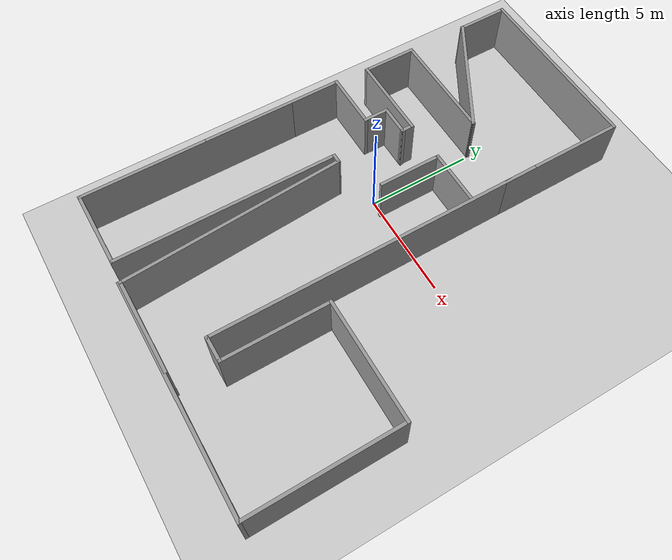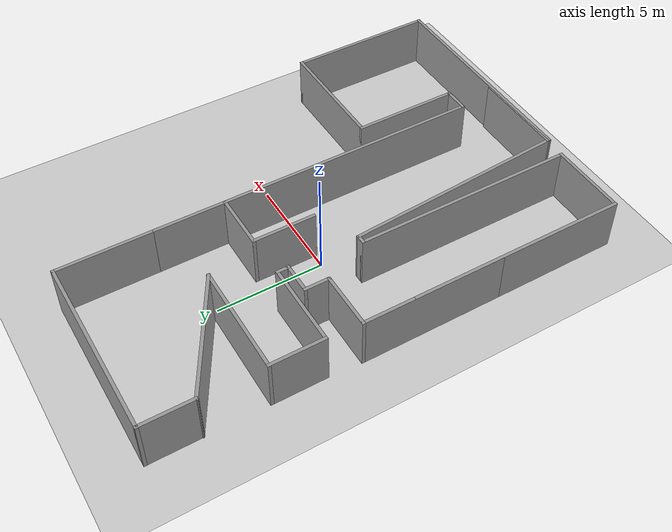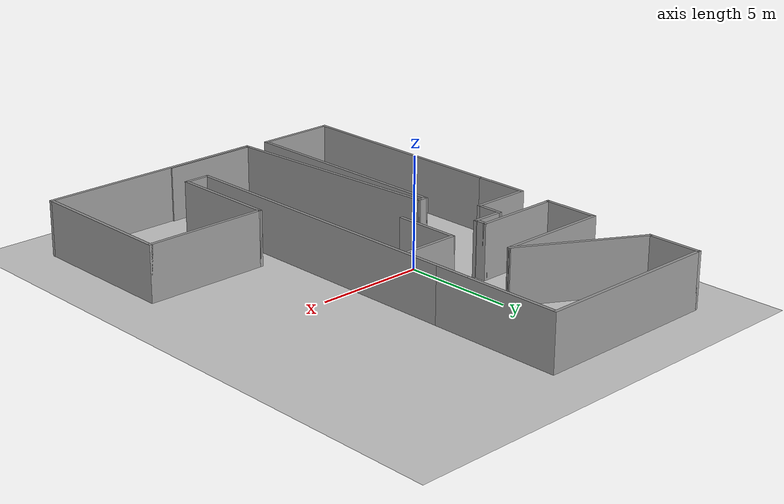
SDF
<sdf version="1.7">
 <world name="default">
  <light name="sun" type="directional">
   <pose>0 0 10 0 -0 0</pose>
   <diffuse>0.8 0.8 0.8 1</diffuse>
   <specular>0.2 0.2 0.2 1</specular>
   <attenuation>
    <range>1000</range>
    <constant>0.9</constant>
    <linear>0.01</linear>
    <quadratic>0.001</quadratic>
   </attenuation>
   <direction>-0.5 0.1 -0.9</direction>
   <spot><inner_angle>0</inner_angle><outer_angle>0</outer_angle><falloff>0</falloff></spot>
  </light>
  <model name="ground_plane">
   <static>1</static>
   <link name="link">
    <collision name="collision">
     <geometry><plane><normal>0 0 1</normal><size>100 100</size></plane></geometry>
     <surface>
      <contact><collide_bitmask>65535</collide_bitmask></contact>
      <friction><ode><mu>100</mu><mu2>50</mu2></ode></friction>
     </surface>
    </collision>
    <visual name="visual">
     <cast_shadows>0</cast_shadows>
     <geometry><plane><normal>0 0 1</normal><size>100 100</size></plane></geometry>
     <material>
      <script><uri>file://media/materials/scripts/gazebo.material</uri><name>Gazebo/Grey</name></script>
     </material>
    </visual>
   </link>
  </model>
  <gravity>0 0 -9.8</gravity>
  <magnetic_field>6e-06 2.3e-05 -4.2e-05</magnetic_field>
  <atmosphere type="adiabatic"/>
  <physics type="ode">
   <max_step_size>0.001</max_step_size>
   <real_time_factor>1</real_time_factor>
   <real_time_update_rate>1000</real_time_update_rate>
  </physics>
  <scene><ambient>0.4 0.4 0.4 1</ambient><background>0.7 0.7 0.7 1</background><shadows>1</shadows></scene>
  <spherical_coordinates>
   <surface_model>EARTH_WGS84</surface_model>
   <latitude_deg>0</latitude_deg>
   <longitude_deg>0</longitude_deg>
   <elevation>0</elevation>
   <heading_deg>0</heading_deg>
  </spherical_coordinates>
  <model name="final_swarm.world">
   <pose>2.3562 0.089672 0 0 -0 0</pose>
   <link name="Wall_0">
    <collision name="Wall_0_Collision">
     <geometry><box><size>0.16 0.15 2.5</size></box></geometry>
     <pose>0 0 1.25 0 -0 0</pose>
    </collision>
    <visual name="Wall_0_Visual">
     <pose>0 0 1.25 0 -0 0</pose>
     <geometry><box><size>0.16 0.15 2.5</size></box></geometry>
     <material>
      <script><uri>file://media/materials/scripts/gazebo.material</uri><name>Gazebo/Grey</name></script>
      <ambient>1 1 1 1</ambient>
     </material>
     <meta><layer>0</layer></meta>
    </visual>
    <pose>-7.50216 10.3908 0 0 -0 0</pose>
   </link>
   <link name="Wall_1">
    <collision name="Wall_1_Collision">
     <geometry><box><size>8.58 0.15 2.5</size></box></geometry>
     <pose>0 0 1.25 0 -0 0</pose>
    </collision>
    <visual name="Wall_1_Visual">
     <pose>0 0 1.25 0 -0 0</pose>
     <geometry><box><size>8.58 0.15 2.5</size></box></geometry>
     <material>
      <script><uri>file://media/materials/scripts/gazebo.material</uri><name>Gazebo/Grey</name></script>
      <ambient>1 1 1 1</ambient>
     </material>
     <meta><layer>0</layer></meta>
    </visual>
    <pose>-3.28216 10.3908 0 0 -0 0</pose>
   </link>
   <link name="Wall_10">
    <collision name="Wall_10_Collision">
     <geometry><box><size>2.59909 0.15 2.5</size></box></geometry>
     <pose>0 0 1.25 0 -0 0</pose>
    </collision>
    <visual name="Wall_10_Visual">
     <pose>0 0 1.25 0 -0 0</pose>
     <geometry><box><size>2.59909 0.15 2.5</size></box></geometry>
     <material>
      <script><uri>file://media/materials/scripts/gazebo.material</uri><name>Gazebo/Grey</name></script>
      <ambient>1 1 1 1</ambient>
     </material>
     <meta><layer>0</layer></meta>
    </visual>
    <pose>-7.53091 3.89122 0 0 -0 -1.5708</pose>
   </link>
   <link name="Wall_12">
    <collision name="Wall_12_Collision">
     <geometry><box><size>4 0.15 2.5</size></box></geometry>
     <pose>0 0 1.25 0 -0 0</pose>
    </collision>
    <visual name="Wall_12_Visual">
     <pose>0 0 1.25 0 -0 0</pose>
     <geometry><box><size>4 0.15 2.5</size></box></geometry>
     <material>
      <script><uri>file://media/materials/scripts/gazebo.material</uri><name>Gazebo/Grey</name></script>
      <ambient>1 1 1 1</ambient>
     </material>
     <meta><layer>0</layer></meta>
    </visual>
    <pose>-5.60591 2.66668 0 0 -0 0</pose>
   </link>
   <link name="Wall_13">
    <collision name="Wall_13_Collision">
     <geometry><box><size>0.650915 0.15 2.5</size></box></geometry>
     <pose>0 0 1.25 0 -0 0</pose>
    </collision>
    <visual name="Wall_13_Visual">
     <pose>0 0 1.25 0 -0 0</pose>
     <geometry><box><size>0.650915 0.15 2.5</size></box></geometry>
     <material>
      <script><uri>file://media/materials/scripts/gazebo.material</uri><name>Gazebo/Grey</name></script>
      <ambient>1 1 1 1</ambient>
     </material>
     <meta><layer>0</layer></meta>
    </visual>
    <pose>-3.68091 2.41622 0 0 -0 -1.5708</pose>
   </link>
   <link name="Wall_15">
    <collision name="Wall_15_Collision">
     <geometry><box><size>0.194036 0.15 2.5</size></box></geometry>
     <pose>0 0 1.25 0 -0 0</pose>
    </collision>
    <visual name="Wall_15_Visual">
     <pose>0 0 1.25 0 -0 0</pose>
     <geometry><box><size>0.194036 0.15 2.5</size></box></geometry>
     <material>
      <script><uri>file://media/materials/scripts/gazebo.material</uri><name>Gazebo/Grey</name></script>
      <ambient>1 1 1 1</ambient>
     </material>
     <meta><layer>0</layer></meta>
    </visual>
    <pose>-3.65903 2.16826 0 0 -0 0.113788</pose>
   </link>
   <link name="Wall_18">
    <collision name="Wall_18_Collision">
     <geometry><box><size>1.5 0.15 2.5</size></box></geometry>
     <pose>0 0 1.25 0 -0 0</pose>
    </collision>
    <visual name="Wall_18_Visual">
     <pose>0 0 1.25 0 -0 0</pose>
     <geometry><box><size>1.5 0.15 2.5</size></box></geometry>
     <material>
      <script><uri>file://media/materials/scripts/gazebo.material</uri><name>Gazebo/Grey</name></script>
      <ambient>1 1 1 1</ambient>
     </material>
     <meta><layer>0</layer></meta>
    </visual>
    <pose>-4.35591 2.16576 0 0 -0 3.14159</pose>
   </link>
   <link name="Wall_19">
    <collision name="Wall_19_Collision">
     <geometry><box><size>1.25 0.15 2.5</size></box></geometry>
     <pose>0 0 1.25 0 -0 0</pose>
    </collision>
    <visual name="Wall_19_Visual">
     <pose>0 0 1.25 0 -0 0</pose>
     <geometry><box><size>1.25 0.15 2.5</size></box></geometry>
     <material>
      <script><uri>file://media/materials/scripts/gazebo.material</uri><name>Gazebo/Grey</name></script>
      <ambient>1 1 1 1</ambient>
     </material>
     <meta><layer>0</layer></meta>
    </visual>
    <pose>-5.03091 1.61576 0 0 -0 -1.5708</pose>
   </link>
   <link name="Wall_20">
    <collision name="Wall_20_Collision">
     <geometry><box><size>2.75 0.15 2.5</size></box></geometry>
     <pose>0 0 1.25 0 -0 0</pose>
    </collision>
    <visual name="Wall_20_Visual">
     <pose>0 0 1.25 0 -0 0</pose>
     <geometry><box><size>2.75 0.15 2.5</size></box></geometry>
     <material>
      <script><uri>file://media/materials/scripts/gazebo.material</uri><name>Gazebo/Grey</name></script>
      <ambient>1 1 1 1</ambient>
     </material>
     <meta><layer>0</layer></meta>
    </visual>
    <pose>-6.33091 1.06576 0 0 -0 3.14159</pose>
   </link>
   <link name="Wall_22">
    <collision name="Wall_22_Collision">
     <geometry><box><size>6.75 0.15 2.5</size></box></geometry>
     <pose>0 0 1.25 0 -0 0</pose>
    </collision>
    <visual name="Wall_22_Visual">
     <pose>0 0 1.25 0 -0 0</pose>
     <geometry><box><size>6.75 0.15 2.5</size></box></geometry>
     <material>
      <script><uri>file://media/materials/scripts/gazebo.material</uri><name>Gazebo/Grey</name></script>
      <ambient>1 1 1 1</ambient>
     </material>
     <meta><layer>0</layer></meta>
    </visual>
    <pose>-7.63091 -2.23424 0 0 -0 -1.5708</pose>
   </link>
   <link name="Wall_24">
    <collision name="Wall_24_Collision">
     <geometry><box><size>10.25 0.15 2.5</size></box></geometry>
     <pose>0 0 1.25 0 -0 0</pose>
    </collision>
    <visual name="Wall_24_Visual">
     <pose>0 0 1.25 0 -0 0</pose>
     <geometry><box><size>10.25 0.15 2.5</size></box></geometry>
     <material>
      <script><uri>file://media/materials/scripts/gazebo.material</uri><name>Gazebo/Grey</name></script>
      <ambient>1 1 1 1</ambient>
     </material>
     <meta><layer>0</layer></meta>
    </visual>
    <pose>-7.6307 -6.43449 0 0 -0 -1.5708</pose>
   </link>
   <link name="Wall_25">
    <collision name="Wall_25_Collision">
     <geometry><box><size>3.75 0.15 2.5</size></box></geometry>
     <pose>0 0 1.25 0 -0 0</pose>
    </collision>
    <visual name="Wall_25_Visual">
     <pose>0 0 1.25 0 -0 0</pose>
     <geometry><box><size>3.75 0.15 2.5</size></box></geometry>
     <material>
      <script><uri>file://media/materials/scripts/gazebo.material</uri><name>Gazebo/Grey</name></script>
      <ambient>1 1 1 1</ambient>
     </material>
     <meta><layer>0</layer></meta>
    </visual>
    <pose>-5.8307 -11.4845 0 0 -0 0</pose>
   </link>
   <link name="Wall_26">
    <collision name="Wall_26_Collision">
     <geometry><box><size>10.5 0.15 2.5</size></box></geometry>
     <pose>0 0 1.25 0 -0 0</pose>
    </collision>
    <visual name="Wall_26_Visual">
     <pose>0 0 1.25 0 -0 0</pose>
     <geometry><box><size>10.5 0.15 2.5</size></box></geometry>
     <material>
      <script><uri>file://media/materials/scripts/gazebo.material</uri><name>Gazebo/Grey</name></script>
      <ambient>1 1 1 1</ambient>
     </material>
     <meta><layer>0</layer></meta>
    </visual>
    <pose>-4.03069 -6.30949 0 0 -0 1.5708</pose>
   </link>
   <link name="Wall_27">
    <collision name="Wall_27_Collision">
     <geometry><box><size>0.5 0.15 2.5</size></box></geometry>
     <pose>0 0 1.25 0 -0 0</pose>
    </collision>
    <visual name="Wall_27_Visual">
     <pose>0 0 1.25 0 -0 0</pose>
     <geometry><box><size>0.5 0.15 2.5</size></box></geometry>
     <material>
      <script><uri>file://media/materials/scripts/gazebo.material</uri><name>Gazebo/Grey</name></script>
      <ambient>1 1 1 1</ambient>
     </material>
     <meta><layer>0</layer></meta>
    </visual>
    <pose>-3.85569 -1.13449 0 0 -0 0</pose>
   </link>
   <link name="Wall_28">
    <collision name="Wall_28_Collision">
     <geometry><box><size>10.5948 0.15 2.5</size></box></geometry>
     <pose>0 0 1.25 0 -0 0</pose>
    </collision>
    <visual name="Wall_28_Visual">
     <pose>0 0 1.25 0 -0 0</pose>
     <geometry><box><size>10.5948 0.15 2.5</size></box></geometry>
     <material>
      <script><uri>file://media/materials/scripts/gazebo.material</uri><name>Gazebo/Grey</name></script>
      <ambient>1 1 1 1</ambient>
     </material>
     <meta><layer>0</layer></meta>
    </visual>
    <pose>-3.32691 -6.34487 0 0 -0 -1.503</pose>
   </link>
   <link name="Wall_29">
    <collision name="Wall_29_Collision">
     <geometry><box><size>4.5 0.15 2.5</size></box></geometry>
     <pose>0 0 1.25 0 -0 0</pose>
    </collision>
    <visual name="Wall_29_Visual">
     <pose>0 0 1.25 0 -0 0</pose>
     <geometry><box><size>4.5 0.15 2.5</size></box></geometry>
     <material>
      <script><uri>file://media/materials/scripts/gazebo.material</uri><name>Gazebo/Grey</name></script>
      <ambient>1 1 1 1</ambient>
     </material>
     <meta><layer>0</layer></meta>
    </visual>
    <pose>-0.798125 -11.5552 0 0 -0 0</pose>
   </link>
   <link name="Wall_3">
    <collision name="Wall_3_Collision">
     <geometry><box><size>6 0.15 2.5</size></box></geometry>
     <pose>0 0 1.25 0 -0 0</pose>
    </collision>
    <visual name="Wall_3_Visual">
     <pose>0 0 1.25 0 -0 0</pose>
     <geometry><box><size>6 0.15 2.5</size></box></geometry>
     <material>
      <script><uri>file://media/materials/scripts/gazebo.material</uri><name>Gazebo/Grey</name></script>
      <ambient>1 1 1 1</ambient>
     </material>
     <meta><layer>0</layer></meta>
    </visual>
    <pose>0.932842 7.46576 0 0 -0 -1.5708</pose>
   </link>
   <link name="Wall_32">
    <collision name="Wall_32_Collision">
     <geometry><box><size>2.75 0.15 2.5</size></box></geometry>
     <pose>0 0 1.25 0 -0 0</pose>
    </collision>
    <visual name="Wall_32_Visual">
     <pose>0 0 1.25 0 -0 0</pose>
     <geometry><box><size>2.75 0.15 2.5</size></box></geometry>
     <material>
      <script><uri>file://media/materials/scripts/gazebo.material</uri><name>Gazebo/Grey</name></script>
      <ambient>1 1 1 1</ambient>
     </material>
     <meta><layer>0</layer></meta>
    </visual>
    <pose>-0.387102 2.71942 0 0 -0 0</pose>
   </link>
   <link name="Wall_34">
    <collision name="Wall_34_Collision">
     <geometry><box><size>3 0.15 2.5</size></box></geometry>
     <pose>0 0 1.25 0 -0 0</pose>
    </collision>
    <visual name="Wall_34_Visual">
     <pose>0 0 1.25 0 -0 0</pose>
     <geometry><box><size>3 0.15 2.5</size></box></geometry>
     <material>
      <script><uri>file://media/materials/scripts/gazebo.material</uri><name>Gazebo/Grey</name></script>
      <ambient>1 1 1 1</ambient>
     </material>
     <meta><layer>0</layer></meta>
    </visual>
    <pose>-1.6871 1.29442 0 0 -0 -1.5708</pose>
   </link>
   <link name="Wall_37">
    <collision name="Wall_37_Collision">
     <geometry><box><size>15.75 0.15 2.5</size></box></geometry>
     <pose>0 0 1.25 0 -0 0</pose>
    </collision>
    <visual name="Wall_37_Visual">
     <pose>0 0 1.25 0 -0 0</pose>
     <geometry><box><size>15.75 0.15 2.5</size></box></geometry>
     <material>
      <script><uri>file://media/materials/scripts/gazebo.material</uri><name>Gazebo/Grey</name></script>
      <ambient>1 1 1 1</ambient>
     </material>
     <meta><layer>0</layer></meta>
    </visual>
    <pose>0.930909 -1.82576 0 0 -0 -1.5708</pose>
   </link>
   <link name="Wall_38">
    <collision name="Wall_38_Collision">
     <geometry><box><size>1.25 0.15 2.5</size></box></geometry>
     <pose>0 0 1.25 0 -0 0</pose>
    </collision>
    <visual name="Wall_38_Visual">
     <pose>0 0 1.25 0 -0 0</pose>
     <geometry><box><size>1.25 0.15 2.5</size></box></geometry>
     <material>
      <script><uri>file://media/materials/scripts/gazebo.material</uri><name>Gazebo/Grey</name></script>
      <ambient>1 1 1 1</ambient>
     </material>
     <meta><layer>0</layer></meta>
    </visual>
    <pose>1.48091 -9.62576 0 0 -0 0</pose>
   </link>
   <link name="Wall_39">
    <collision name="Wall_39_Collision">
     <geometry><box><size>5 0.15 2.5</size></box></geometry>
     <pose>0 0 1.25 0 -0 0</pose>
    </collision>
    <visual name="Wall_39_Visual">
     <pose>0 0 1.25 0 -0 0</pose>
     <geometry><box><size>5 0.15 2.5</size></box></geometry>
     <material>
      <script><uri>file://media/materials/scripts/gazebo.material</uri><name>Gazebo/Grey</name></script>
      <ambient>1 1 1 1</ambient>
     </material>
     <meta><layer>0</layer></meta>
    </visual>
    <pose>2.03091 -7.20076 0 0 -0 1.5708</pose>
   </link>
   <link name="Wall_40">
    <collision name="Wall_40_Collision">
     <geometry><box><size>5.75 0.15 2.5</size></box></geometry>
     <pose>0 0 1.25 0 -0 0</pose>
    </collision>
    <visual name="Wall_40_Visual">
     <pose>0 0 1.25 0 -0 0</pose>
     <geometry><box><size>5.75 0.15 2.5</size></box></geometry>
     <material>
      <script><uri>file://media/materials/scripts/gazebo.material</uri><name>Gazebo/Grey</name></script>
      <ambient>1 1 1 1</ambient>
     </material>
     <meta><layer>0</layer></meta>
    </visual>
    <pose>4.83091 -4.77576 0 0 -0 0</pose>
   </link>
   <link name="Wall_41">
    <collision name="Wall_41_Collision">
     <geometry><box><size>7 0.15 2.5</size></box></geometry>
     <pose>0 0 1.25 0 -0 0</pose>
    </collision>
    <visual name="Wall_41_Visual">
     <pose>0 0 1.25 0 -0 0</pose>
     <geometry><box><size>7 0.15 2.5</size></box></geometry>
     <material>
      <script><uri>file://media/materials/scripts/gazebo.material</uri><name>Gazebo/Grey</name></script>
      <ambient>1 1 1 1</ambient>
     </material>
     <meta><layer>0</layer></meta>
    </visual>
    <pose>7.63091 -8.20076 0 0 -0 -1.5708</pose>
   </link>
   <link name="Wall_42">
    <collision name="Wall_42_Collision">
     <geometry><box><size>10.75 0.15 2.5</size></box></geometry>
     <pose>0 0 1.25 0 -0 0</pose>
    </collision>
    <visual name="Wall_42_Visual">
     <pose>0 0 1.25 0 -0 0</pose>
     <geometry><box><size>10.75 0.15 2.5</size></box></geometry>
     <material>
      <script><uri>file://media/materials/scripts/gazebo.material</uri><name>Gazebo/Grey</name></script>
      <ambient>1 1 1 1</ambient>
     </material>
     <meta><layer>0</layer></meta>
    </visual>
    <pose>2.33091 -11.6258 0 0 -0 3.14159</pose>
   </link>
   <link name="Wall_5">
    <collision name="Wall_5_Collision">
     <geometry><box><size>2.5 0.15 2.5</size></box></geometry>
     <pose>0 0 1.25 0 -0 0</pose>
    </collision>
    <visual name="Wall_5_Visual">
     <pose>0 0 1.25 0 -0 0</pose>
     <geometry><box><size>2.5 0.15 2.5</size></box></geometry>
     <material>
      <script><uri>file://media/materials/scripts/gazebo.material</uri><name>Gazebo/Grey</name></script>
      <ambient>1 1 1 1</ambient>
     </material>
     <meta><layer>0</layer></meta>
    </visual>
    <pose>-7.49716 9.21576 0 0 -0 -1.5708</pose>
   </link>
   <link name="Wall_6">
    <collision name="Wall_6_Collision">
     <geometry><box><size>6 0.15 2.5</size></box></geometry>
     <pose>0 0 1.25 0 -0 0</pose>
    </collision>
    <visual name="Wall_6_Visual">
     <pose>0 0 1.25 0 -0 0</pose>
     <geometry><box><size>6 0.15 2.5</size></box></geometry>
     <material>
      <script><uri>file://media/materials/scripts/gazebo.material</uri><name>Gazebo/Grey</name></script>
      <ambient>1 1 1 1</ambient>
     </material>
     <meta><layer>0</layer></meta>
    </visual>
    <pose>-4.96403 6.57826 0 0 -0 -0.523599</pose>
   </link>
   <link name="Wall_8">
    <collision name="Wall_8_Collision">
     <geometry><box><size>5.25 0.15 2.5</size></box></geometry>
     <pose>0 0 1.25 0 -0 0</pose>
    </collision>
    <visual name="Wall_8_Visual">
     <pose>0 0 1.25 0 -0 0</pose>
     <geometry><box><size>5.25 0.15 2.5</size></box></geometry>
     <material>
      <script><uri>file://media/materials/scripts/gazebo.material</uri><name>Gazebo/Grey</name></script>
      <ambient>1 1 1 1</ambient>
     </material>
     <meta><layer>0</layer></meta>
    </visual>
    <pose>-4.98091 5.11576 0 0 -0 3.14159</pose>
   </link>
   <static>1</static>
  </model>
 </world>
</sdf>
